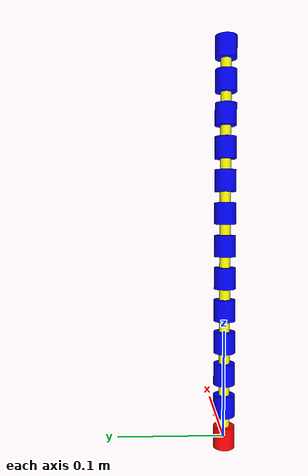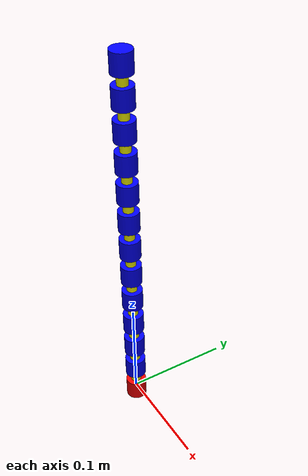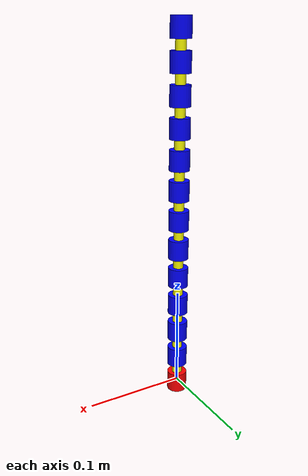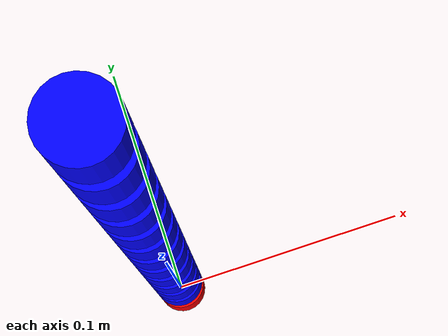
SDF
<sdf version="1.6">
  <model name='chain_sleeve'>

  <dynamics damping="0.0" />
  <contact>
    <restitution value="0.01"/>
    <lateral_friction value="0.5"/>
    <rolling_friction value="0.5"/>
    <contact_cfm value="0.0"/>
    <contact_erp value="1.0"/>
  </contact>

  <link name='body_link_0'>
    <self_collide>1</self_collide>
    <pose>0 0 0 0 -0 0</pose>
    <inertial>
      <pose>0 0 0 0 -0 0</pose>
      <mass>0.002</mass>
      <inertia>
        <ixx>1.1666666666666667e-07</ixx>
        <ixy>0</ixy>
        <ixz>0</ixz>
        <iyy>1.1666666666666667e-07</iyy>
        <iyz>0</iyz>
        <izz>1.0000000000000001e-07</izz>
      </inertia>
    </inertial>
    <collision name='base_link_collision_0'>
      <pose>0 0 0 0 -0 0</pose>
      <geometry>
        <cylinder>
          <length>0.02 0.02 0.02</length>
          <radius>0.01 0.01 0.01</radius>
        </cylinder>
      </geometry>
    </collision>
    <visual name='base_link_visual_0'>
      <pose>0 0 0 0 -0 0</pose>
      <geometry>
        <cylinder>
          <length>0.02 0.02 0.02</length>
          <radius>0.01 0.01 0.01</radius>
        </cylinder>
      </geometry>
      <material name="red">
        <ambient>1 0 0 1</ambient>
        <diffuse>1 0 0 1</diffuse>
        <specular>1 0 0 1</specular>
        <emissive>0 0 0 0</emissive>
      </material>
    </visual>
  </link>

  <link name='aux_body_link_1'>
    <self_collide>1</self_collide>
    <pose>0 0 0.015 0 -0 0</pose>
    <inertial>
      <pose>0 0 0 0 -0 0</pose>
      <mass>0.002</mass>
      <inertia>
        <ixx>2.9166666666666666e-08</ixx>
        <ixy>0</ixy>
        <ixz>0</ixz>
        <iyy>2.9166666666666666e-08</iyy>
        <iyz>0</iyz>
        <izz>2.5000000000000002e-08</izz>
      </inertia>
    </inertial>
    <collision name='aux_body_link_1_collision'>
      <pose>0 0 0 0 -0 0</pose>
      <geometry>
        <cylinder>
          <length>0.01 0.01 0.01</length>
          <radius>0.005 0.005 0.005</radius>
        </cylinder>
      </geometry>
    </collision>
    <visual name='aux_body_link_1_visual'>
      <pose>0 0 0 0 -0 0</pose>
      <geometry>
        <cylinder>
          <length>0.01 0.01 0.01</length>
          <radius>0.005 0.005 0.005</radius>
        </cylinder>
      </geometry>
      <material name="yellow">
        <ambient>1 1 0 1</ambient>
        <diffuse>1 1 0 1</diffuse>
        <specular>1 1 0 1</specular>
        <emissive>0 0 0 0</emissive>
      </material>
    </visual>
  </link>

  <joint name='aux_body_link_1_joint' type='revolute'>
    <pose>0 0 -0.005 0 0 0</pose>
    <child>aux_body_link_1</child>
    <parent>body_link_0</parent>
    <axis>
      <xyz>1 0 0</xyz>
      <limit>
        <lower>-3.14159</lower>
        <upper>3.14159</upper>
        <effort>20</effort>
        <velocity>2</velocity>
      </limit>
    </axis>
  </joint>

  <link name='body_link_1'>
    <self_collide>1</self_collide>
    <pose>0 0 0.03 0 -0 0</pose>
    <inertial>
      <pose>0 0 0 0 -0 0</pose>
      <mass>0.002</mass>
      <inertia>
        <ixx>1.1666666666666667e-07</ixx>
        <ixy>0</ixy>
        <ixz>0</ixz>
        <iyy>1.1666666666666667e-07</iyy>
        <iyz>0</iyz>
        <izz>1.0000000000000001e-07</izz>
      </inertia>
    </inertial>
    <collision name='body_link_1_collision'>
      <pose>0 0 0 0 -0 0</pose>
      <geometry>
        <cylinder>
          <length>0.02 0.02 0.02</length>
          <radius>0.01 0.01 0.01</radius>
        </cylinder>
      </geometry>
    </collision>
    <visual name='body_link_1_visual'>
      <pose>0 0 0 0 -0 0</pose>
      <geometry>
        <cylinder>
          <length>0.02 0.02 0.02</length>
          <radius>0.01 0.01 0.01</radius>
        </cylinder>
      </geometry>
      <material name="blue">
        <ambient>0 0 1 1</ambient>
        <diffuse>0 0 1 1</diffuse>
        <specular>0 0 1 1</specular>
        <emissive>0 0 0 0</emissive>
      </material>
    </visual>
  </link>

  <joint name='body_link_1_joint' type='revolute'>
    <pose>0 0 -0.01 0 0 0</pose>
    <child>body_link_1</child>
    <parent>aux_body_link_1</parent>
    <axis>
      <xyz>0 1 0</xyz>
      <limit>
        <lower>-3.14159</lower>
        <upper>3.14159</upper>
        <effort>20</effort>
        <velocity>2</velocity>
      </limit>
    </axis>
  </joint>

  <link name='aux_body_link_2'>
    <self_collide>1</self_collide>
    <pose>0 0 0.045 0 -0 0</pose>
    <inertial>
      <pose>0 0 0 0 -0 0</pose>
      <mass>0.002</mass>
      <inertia>
        <ixx>2.9166666666666666e-08</ixx>
        <ixy>0</ixy>
        <ixz>0</ixz>
        <iyy>2.9166666666666666e-08</iyy>
        <iyz>0</iyz>
        <izz>2.5000000000000002e-08</izz>
      </inertia>
    </inertial>
    <collision name='aux_body_link_2_collision'>
      <pose>0 0 0 0 -0 0</pose>
      <geometry>
        <cylinder>
          <length>0.01 0.01 0.01</length>
          <radius>0.005 0.005 0.005</radius>
        </cylinder>
      </geometry>
    </collision>
    <visual name='aux_body_link_2_visual'>
      <pose>0 0 0 0 -0 0</pose>
      <geometry>
        <cylinder>
          <length>0.01 0.01 0.01</length>
          <radius>0.005 0.005 0.005</radius>
        </cylinder>
      </geometry>
      <material name="yellow">
        <ambient>1 1 0 1</ambient>
        <diffuse>1 1 0 1</diffuse>
        <specular>1 1 0 1</specular>
        <emissive>0 0 0 0</emissive>
      </material>
    </visual>
  </link>

  <joint name='aux_body_link_2_joint' type='revolute'>
    <pose>0 0 -0.005 0 0 0</pose>
    <child>aux_body_link_2</child>
    <parent>body_link_1</parent>
    <axis>
      <xyz>1 0 0</xyz>
      <limit>
        <lower>-3.14159</lower>
        <upper>3.14159</upper>
        <effort>20</effort>
        <velocity>2</velocity>
      </limit>
    </axis>
  </joint>

  <link name='body_link_2'>
    <self_collide>1</self_collide>
    <pose>0 0 0.06 0 -0 0</pose>
    <inertial>
      <pose>0 0 0 0 -0 0</pose>
      <mass>0.002</mass>
      <inertia>
        <ixx>1.1666666666666667e-07</ixx>
        <ixy>0</ixy>
        <ixz>0</ixz>
        <iyy>1.1666666666666667e-07</iyy>
        <iyz>0</iyz>
        <izz>1.0000000000000001e-07</izz>
      </inertia>
    </inertial>
    <collision name='body_link_2_collision'>
      <pose>0 0 0 0 -0 0</pose>
      <geometry>
        <cylinder>
          <length>0.02 0.02 0.02</length>
          <radius>0.01 0.01 0.01</radius>
        </cylinder>
      </geometry>
    </collision>
    <visual name='body_link_2_visual'>
      <pose>0 0 0 0 -0 0</pose>
      <geometry>
        <cylinder>
          <length>0.02 0.02 0.02</length>
          <radius>0.01 0.01 0.01</radius>
        </cylinder>
      </geometry>
      <material name="blue">
        <ambient>0 0 1 1</ambient>
        <diffuse>0 0 1 1</diffuse>
        <specular>0 0 1 1</specular>
        <emissive>0 0 0 0</emissive>
      </material>
    </visual>
  </link>

  <joint name='body_link_2_joint' type='revolute'>
    <pose>0 0 -0.01 0 0 0</pose>
    <child>body_link_2</child>
    <parent>aux_body_link_2</parent>
    <axis>
      <xyz>0 1 0</xyz>
      <limit>
        <lower>-3.14159</lower>
        <upper>3.14159</upper>
        <effort>20</effort>
        <velocity>2</velocity>
      </limit>
    </axis>
  </joint>

  <link name='aux_body_link_3'>
    <self_collide>1</self_collide>
    <pose>0 0 0.075 0 -0 0</pose>
    <inertial>
      <pose>0 0 0 0 -0 0</pose>
      <mass>0.002</mass>
      <inertia>
        <ixx>2.9166666666666666e-08</ixx>
        <ixy>0</ixy>
        <ixz>0</ixz>
        <iyy>2.9166666666666666e-08</iyy>
        <iyz>0</iyz>
        <izz>2.5000000000000002e-08</izz>
      </inertia>
    </inertial>
    <collision name='aux_body_link_3_collision'>
      <pose>0 0 0 0 -0 0</pose>
      <geometry>
        <cylinder>
          <length>0.01 0.01 0.01</length>
          <radius>0.005 0.005 0.005</radius>
        </cylinder>
      </geometry>
    </collision>
    <visual name='aux_body_link_3_visual'>
      <pose>0 0 0 0 -0 0</pose>
      <geometry>
        <cylinder>
          <length>0.01 0.01 0.01</length>
          <radius>0.005 0.005 0.005</radius>
        </cylinder>
      </geometry>
      <material name="yellow">
        <ambient>1 1 0 1</ambient>
        <diffuse>1 1 0 1</diffuse>
        <specular>1 1 0 1</specular>
        <emissive>0 0 0 0</emissive>
      </material>
    </visual>
  </link>

  <joint name='aux_body_link_3_joint' type='revolute'>
    <pose>0 0 -0.005 0 0 0</pose>
    <child>aux_body_link_3</child>
    <parent>body_link_2</parent>
    <axis>
      <xyz>1 0 0</xyz>
      <limit>
        <lower>-3.14159</lower>
        <upper>3.14159</upper>
        <effort>20</effort>
        <velocity>2</velocity>
      </limit>
    </axis>
  </joint>

  <link name='body_link_3'>
    <self_collide>1</self_collide>
    <pose>0 0 0.09 0 -0 0</pose>
    <inertial>
      <pose>0 0 0 0 -0 0</pose>
      <mass>0.002</mass>
      <inertia>
        <ixx>1.1666666666666667e-07</ixx>
        <ixy>0</ixy>
        <ixz>0</ixz>
        <iyy>1.1666666666666667e-07</iyy>
        <iyz>0</iyz>
        <izz>1.0000000000000001e-07</izz>
      </inertia>
    </inertial>
    <collision name='body_link_3_collision'>
      <pose>0 0 0 0 -0 0</pose>
      <geometry>
        <cylinder>
          <length>0.02 0.02 0.02</length>
          <radius>0.01 0.01 0.01</radius>
        </cylinder>
      </geometry>
    </collision>
    <visual name='body_link_3_visual'>
      <pose>0 0 0 0 -0 0</pose>
      <geometry>
        <cylinder>
          <length>0.02 0.02 0.02</length>
          <radius>0.01 0.01 0.01</radius>
        </cylinder>
      </geometry>
      <material name="blue">
        <ambient>0 0 1 1</ambient>
        <diffuse>0 0 1 1</diffuse>
        <specular>0 0 1 1</specular>
        <emissive>0 0 0 0</emissive>
      </material>
    </visual>
  </link>

  <joint name='body_link_3_joint' type='revolute'>
    <pose>0 0 -0.01 0 0 0</pose>
    <child>body_link_3</child>
    <parent>aux_body_link_3</parent>
    <axis>
      <xyz>0 1 0</xyz>
      <limit>
        <lower>-3.14159</lower>
        <upper>3.14159</upper>
        <effort>20</effort>
        <velocity>2</velocity>
      </limit>
    </axis>
  </joint>

  <link name='aux_body_link_4'>
    <self_collide>1</self_collide>
    <pose>0 0 0.105 0 -0 0</pose>
    <inertial>
      <pose>0 0 0 0 -0 0</pose>
      <mass>0.002</mass>
      <inertia>
        <ixx>2.9166666666666666e-08</ixx>
        <ixy>0</ixy>
        <ixz>0</ixz>
        <iyy>2.9166666666666666e-08</iyy>
        <iyz>0</iyz>
        <izz>2.5000000000000002e-08</izz>
      </inertia>
    </inertial>
    <collision name='aux_body_link_4_collision'>
      <pose>0 0 0 0 -0 0</pose>
      <geometry>
        <cylinder>
          <length>0.01 0.01 0.01</length>
          <radius>0.005 0.005 0.005</radius>
        </cylinder>
      </geometry>
    </collision>
    <visual name='aux_body_link_4_visual'>
      <pose>0 0 0 0 -0 0</pose>
      <geometry>
        <cylinder>
          <length>0.01 0.01 0.01</length>
          <radius>0.005 0.005 0.005</radius>
        </cylinder>
      </geometry>
      <material name="yellow">
        <ambient>1 1 0 1</ambient>
        <diffuse>1 1 0 1</diffuse>
        <specular>1 1 0 1</specular>
        <emissive>0 0 0 0</emissive>
      </material>
    </visual>
  </link>

  <joint name='aux_body_link_4_joint' type='revolute'>
    <pose>0 0 -0.005 0 0 0</pose>
    <child>aux_body_link_4</child>
    <parent>body_link_3</parent>
    <axis>
      <xyz>1 0 0</xyz>
      <limit>
        <lower>-3.14159</lower>
        <upper>3.14159</upper>
        <effort>20</effort>
        <velocity>2</velocity>
      </limit>
    </axis>
  </joint>

  <link name='body_link_4'>
    <self_collide>1</self_collide>
    <pose>0 0 0.12 0 -0 0</pose>
    <inertial>
      <pose>0 0 0 0 -0 0</pose>
      <mass>0.002</mass>
      <inertia>
        <ixx>1.1666666666666667e-07</ixx>
        <ixy>0</ixy>
        <ixz>0</ixz>
        <iyy>1.1666666666666667e-07</iyy>
        <iyz>0</iyz>
        <izz>1.0000000000000001e-07</izz>
      </inertia>
    </inertial>
    <collision name='body_link_4_collision'>
      <pose>0 0 0 0 -0 0</pose>
      <geometry>
        <cylinder>
          <length>0.02 0.02 0.02</length>
          <radius>0.01 0.01 0.01</radius>
        </cylinder>
      </geometry>
    </collision>
    <visual name='body_link_4_visual'>
      <pose>0 0 0 0 -0 0</pose>
      <geometry>
        <cylinder>
          <length>0.02 0.02 0.02</length>
          <radius>0.01 0.01 0.01</radius>
        </cylinder>
      </geometry>
      <material name="blue">
        <ambient>0 0 1 1</ambient>
        <diffuse>0 0 1 1</diffuse>
        <specular>0 0 1 1</specular>
        <emissive>0 0 0 0</emissive>
      </material>
    </visual>
  </link>

  <joint name='body_link_4_joint' type='revolute'>
    <pose>0 0 -0.01 0 0 0</pose>
    <child>body_link_4</child>
    <parent>aux_body_link_4</parent>
    <axis>
      <xyz>0 1 0</xyz>
      <limit>
        <lower>-3.14159</lower>
        <upper>3.14159</upper>
        <effort>20</effort>
        <velocity>2</velocity>
      </limit>
    </axis>
  </joint>

  <link name='aux_body_link_5'>
    <self_collide>1</self_collide>
    <pose>0 0 0.135 0 -0 0</pose>
    <inertial>
      <pose>0 0 0 0 -0 0</pose>
      <mass>0.002</mass>
      <inertia>
        <ixx>2.9166666666666666e-08</ixx>
        <ixy>0</ixy>
        <ixz>0</ixz>
        <iyy>2.9166666666666666e-08</iyy>
        <iyz>0</iyz>
        <izz>2.5000000000000002e-08</izz>
      </inertia>
    </inertial>
    <collision name='aux_body_link_5_collision'>
      <pose>0 0 0 0 -0 0</pose>
      <geometry>
        <cylinder>
          <length>0.01 0.01 0.01</length>
          <radius>0.005 0.005 0.005</radius>
        </cylinder>
      </geometry>
    </collision>
    <visual name='aux_body_link_5_visual'>
      <pose>0 0 0 0 -0 0</pose>
      <geometry>
        <cylinder>
          <length>0.01 0.01 0.01</length>
          <radius>0.005 0.005 0.005</radius>
        </cylinder>
      </geometry>
      <material name="yellow">
        <ambient>1 1 0 1</ambient>
        <diffuse>1 1 0 1</diffuse>
        <specular>1 1 0 1</specular>
        <emissive>0 0 0 0</emissive>
      </material>
    </visual>
  </link>

  <joint name='aux_body_link_5_joint' type='revolute'>
    <pose>0 0 -0.005 0 0 0</pose>
    <child>aux_body_link_5</child>
    <parent>body_link_4</parent>
    <axis>
      <xyz>1 0 0</xyz>
      <limit>
        <lower>-3.14159</lower>
        <upper>3.14159</upper>
        <effort>20</effort>
        <velocity>2</velocity>
      </limit>
    </axis>
  </joint>

  <link name='body_link_5'>
    <self_collide>1</self_collide>
    <pose>0 0 0.15 0 -0 0</pose>
    <inertial>
      <pose>0 0 0 0 -0 0</pose>
      <mass>0.002</mass>
      <inertia>
        <ixx>1.1666666666666667e-07</ixx>
        <ixy>0</ixy>
        <ixz>0</ixz>
        <iyy>1.1666666666666667e-07</iyy>
        <iyz>0</iyz>
        <izz>1.0000000000000001e-07</izz>
      </inertia>
    </inertial>
    <collision name='body_link_5_collision'>
      <pose>0 0 0 0 -0 0</pose>
      <geometry>
        <cylinder>
          <length>0.02 0.02 0.02</length>
          <radius>0.01 0.01 0.01</radius>
        </cylinder>
      </geometry>
    </collision>
    <visual name='body_link_5_visual'>
      <pose>0 0 0 0 -0 0</pose>
      <geometry>
        <cylinder>
          <length>0.02 0.02 0.02</length>
          <radius>0.01 0.01 0.01</radius>
        </cylinder>
      </geometry>
      <material name="blue">
        <ambient>0 0 1 1</ambient>
        <diffuse>0 0 1 1</diffuse>
        <specular>0 0 1 1</specular>
        <emissive>0 0 0 0</emissive>
      </material>
    </visual>
  </link>

  <joint name='body_link_5_joint' type='revolute'>
    <pose>0 0 -0.01 0 0 0</pose>
    <child>body_link_5</child>
    <parent>aux_body_link_5</parent>
    <axis>
      <xyz>0 1 0</xyz>
      <limit>
        <lower>-3.14159</lower>
        <upper>3.14159</upper>
        <effort>20</effort>
        <velocity>2</velocity>
      </limit>
    </axis>
  </joint>

  <link name='aux_body_link_6'>
    <self_collide>1</self_collide>
    <pose>0 0 0.16499999999999998 0 -0 0</pose>
    <inertial>
      <pose>0 0 0 0 -0 0</pose>
      <mass>0.002</mass>
      <inertia>
        <ixx>2.9166666666666666e-08</ixx>
        <ixy>0</ixy>
        <ixz>0</ixz>
        <iyy>2.9166666666666666e-08</iyy>
        <iyz>0</iyz>
        <izz>2.5000000000000002e-08</izz>
      </inertia>
    </inertial>
    <collision name='aux_body_link_6_collision'>
      <pose>0 0 0 0 -0 0</pose>
      <geometry>
        <cylinder>
          <length>0.01 0.01 0.01</length>
          <radius>0.005 0.005 0.005</radius>
        </cylinder>
      </geometry>
    </collision>
    <visual name='aux_body_link_6_visual'>
      <pose>0 0 0 0 -0 0</pose>
      <geometry>
        <cylinder>
          <length>0.01 0.01 0.01</length>
          <radius>0.005 0.005 0.005</radius>
        </cylinder>
      </geometry>
      <material name="yellow">
        <ambient>1 1 0 1</ambient>
        <diffuse>1 1 0 1</diffuse>
        <specular>1 1 0 1</specular>
        <emissive>0 0 0 0</emissive>
      </material>
    </visual>
  </link>

  <joint name='aux_body_link_6_joint' type='revolute'>
    <pose>0 0 -0.005 0 0 0</pose>
    <child>aux_body_link_6</child>
    <parent>body_link_5</parent>
    <axis>
      <xyz>1 0 0</xyz>
      <limit>
        <lower>-3.14159</lower>
        <upper>3.14159</upper>
        <effort>20</effort>
        <velocity>2</velocity>
      </limit>
    </axis>
  </joint>

  <link name='body_link_6'>
    <self_collide>1</self_collide>
    <pose>0 0 0.18 0 -0 0</pose>
    <inertial>
      <pose>0 0 0 0 -0 0</pose>
      <mass>0.002</mass>
      <inertia>
        <ixx>1.1666666666666667e-07</ixx>
        <ixy>0</ixy>
        <ixz>0</ixz>
        <iyy>1.1666666666666667e-07</iyy>
        <iyz>0</iyz>
        <izz>1.0000000000000001e-07</izz>
      </inertia>
    </inertial>
    <collision name='body_link_6_collision'>
      <pose>0 0 0 0 -0 0</pose>
      <geometry>
        <cylinder>
          <length>0.02 0.02 0.02</length>
          <radius>0.01 0.01 0.01</radius>
        </cylinder>
      </geometry>
    </collision>
    <visual name='body_link_6_visual'>
      <pose>0 0 0 0 -0 0</pose>
      <geometry>
        <cylinder>
          <length>0.02 0.02 0.02</length>
          <radius>0.01 0.01 0.01</radius>
        </cylinder>
      </geometry>
      <material name="blue">
        <ambient>0 0 1 1</ambient>
        <diffuse>0 0 1 1</diffuse>
        <specular>0 0 1 1</specular>
        <emissive>0 0 0 0</emissive>
      </material>
    </visual>
  </link>

  <joint name='body_link_6_joint' type='revolute'>
    <pose>0 0 -0.01 0 0 0</pose>
    <child>body_link_6</child>
    <parent>aux_body_link_6</parent>
    <axis>
      <xyz>0 1 0</xyz>
      <limit>
        <lower>-3.14159</lower>
        <upper>3.14159</upper>
        <effort>20</effort>
        <velocity>2</velocity>
      </limit>
    </axis>
  </joint>

  <link name='aux_body_link_7'>
    <self_collide>1</self_collide>
    <pose>0 0 0.195 0 -0 0</pose>
    <inertial>
      <pose>0 0 0 0 -0 0</pose>
      <mass>0.002</mass>
      <inertia>
        <ixx>2.9166666666666666e-08</ixx>
        <ixy>0</ixy>
        <ixz>0</ixz>
        <iyy>2.9166666666666666e-08</iyy>
        <iyz>0</iyz>
        <izz>2.5000000000000002e-08</izz>
      </inertia>
    </inertial>
    <collision name='aux_body_link_7_collision'>
      <pose>0 0 0 0 -0 0</pose>
      <geometry>
        <cylinder>
          <length>0.01 0.01 0.01</length>
          <radius>0.005 0.005 0.005</radius>
        </cylinder>
      </geometry>
    </collision>
    <visual name='aux_body_link_7_visual'>
      <pose>0 0 0 0 -0 0</pose>
      <geometry>
        <cylinder>
          <length>0.01 0.01 0.01</length>
          <radius>0.005 0.005 0.005</radius>
        </cylinder>
      </geometry>
      <material name="yellow">
        <ambient>1 1 0 1</ambient>
        <diffuse>1 1 0 1</diffuse>
        <specular>1 1 0 1</specular>
        <emissive>0 0 0 0</emissive>
      </material>
    </visual>
  </link>

  <joint name='aux_body_link_7_joint' type='revolute'>
    <pose>0 0 -0.005 0 0 0</pose>
    <child>aux_body_link_7</child>
    <parent>body_link_6</parent>
    <axis>
      <xyz>1 0 0</xyz>
      <limit>
        <lower>-3.14159</lower>
        <upper>3.14159</upper>
        <effort>20</effort>
        <velocity>2</velocity>
      </limit>
    </axis>
  </joint>

  <link name='body_link_7'>
    <self_collide>1</self_collide>
    <pose>0 0 0.21 0 -0 0</pose>
    <inertial>
      <pose>0 0 0 0 -0 0</pose>
      <mass>0.002</mass>
      <inertia>
        <ixx>1.1666666666666667e-07</ixx>
        <ixy>0</ixy>
        <ixz>0</ixz>
        <iyy>1.1666666666666667e-07</iyy>
        <iyz>0</iyz>
        <izz>1.0000000000000001e-07</izz>
      </inertia>
    </inertial>
    <collision name='body_link_7_collision'>
      <pose>0 0 0 0 -0 0</pose>
      <geometry>
        <cylinder>
          <length>0.02 0.02 0.02</length>
          <radius>0.01 0.01 0.01</radius>
        </cylinder>
      </geometry>
    </collision>
    <visual name='body_link_7_visual'>
      <pose>0 0 0 0 -0 0</pose>
      <geometry>
        <cylinder>
          <length>0.02 0.02 0.02</length>
          <radius>0.01 0.01 0.01</radius>
        </cylinder>
      </geometry>
      <material name="blue">
        <ambient>0 0 1 1</ambient>
        <diffuse>0 0 1 1</diffuse>
        <specular>0 0 1 1</specular>
        <emissive>0 0 0 0</emissive>
      </material>
    </visual>
  </link>

  <joint name='body_link_7_joint' type='revolute'>
    <pose>0 0 -0.01 0 0 0</pose>
    <child>body_link_7</child>
    <parent>aux_body_link_7</parent>
    <axis>
      <xyz>0 1 0</xyz>
      <limit>
        <lower>-3.14159</lower>
        <upper>3.14159</upper>
        <effort>20</effort>
        <velocity>2</velocity>
      </limit>
    </axis>
  </joint>

  <link name='aux_body_link_8'>
    <self_collide>1</self_collide>
    <pose>0 0 0.22499999999999998 0 -0 0</pose>
    <inertial>
      <pose>0 0 0 0 -0 0</pose>
      <mass>0.002</mass>
      <inertia>
        <ixx>2.9166666666666666e-08</ixx>
        <ixy>0</ixy>
        <ixz>0</ixz>
        <iyy>2.9166666666666666e-08</iyy>
        <iyz>0</iyz>
        <izz>2.5000000000000002e-08</izz>
      </inertia>
    </inertial>
    <collision name='aux_body_link_8_collision'>
      <pose>0 0 0 0 -0 0</pose>
      <geometry>
        <cylinder>
          <length>0.01 0.01 0.01</length>
          <radius>0.005 0.005 0.005</radius>
        </cylinder>
      </geometry>
    </collision>
    <visual name='aux_body_link_8_visual'>
      <pose>0 0 0 0 -0 0</pose>
      <geometry>
        <cylinder>
          <length>0.01 0.01 0.01</length>
          <radius>0.005 0.005 0.005</radius>
        </cylinder>
      </geometry>
      <material name="yellow">
        <ambient>1 1 0 1</ambient>
        <diffuse>1 1 0 1</diffuse>
        <specular>1 1 0 1</specular>
        <emissive>0 0 0 0</emissive>
      </material>
    </visual>
  </link>

  <joint name='aux_body_link_8_joint' type='revolute'>
    <pose>0 0 -0.005 0 0 0</pose>
    <child>aux_body_link_8</child>
    <parent>body_link_7</parent>
    <axis>
      <xyz>1 0 0</xyz>
      <limit>
        <lower>-3.14159</lower>
        <upper>3.14159</upper>
        <effort>20</effort>
        <velocity>2</velocity>
      </limit>
    </axis>
  </joint>

  <link name='body_link_8'>
    <self_collide>1</self_collide>
    <pose>0 0 0.24 0 -0 0</pose>
    <inertial>
      <pose>0 0 0 0 -0 0</pose>
      <mass>0.002</mass>
      <inertia>
        <ixx>1.1666666666666667e-07</ixx>
        <ixy>0</ixy>
        <ixz>0</ixz>
        <iyy>1.1666666666666667e-07</iyy>
        <iyz>0</iyz>
        <izz>1.0000000000000001e-07</izz>
      </inertia>
    </inertial>
    <collision name='body_link_8_collision'>
      <pose>0 0 0 0 -0 0</pose>
      <geometry>
        <cylinder>
          <length>0.02 0.02 0.02</length>
          <radius>0.01 0.01 0.01</radius>
        </cylinder>
      </geometry>
    </collision>
    <visual name='body_link_8_visual'>
      <pose>0 0 0 0 -0 0</pose>
      <geometry>
        <cylinder>
          <length>0.02 0.02 0.02</length>
          <radius>0.01 0.01 0.01</radius>
        </cylinder>
      </geometry>
      <material name="blue">
        <ambient>0 0 1 1</ambient>
        <diffuse>0 0 1 1</diffuse>
        <specular>0 0 1 1</specular>
        <emissive>0 0 0 0</emissive>
      </material>
    </visual>
  </link>

  <joint name='body_link_8_joint' type='revolute'>
    <pose>0 0 -0.01 0 0 0</pose>
    <child>body_link_8</child>
    <parent>aux_body_link_8</parent>
    <axis>
      <xyz>0 1 0</xyz>
      <limit>
        <lower>-3.14159</lower>
        <upper>3.14159</upper>
        <effort>20</effort>
        <velocity>2</velocity>
      </limit>
    </axis>
  </joint>

  <link name='aux_body_link_9'>
    <self_collide>1</self_collide>
    <pose>0 0 0.255 0 -0 0</pose>
    <inertial>
      <pose>0 0 0 0 -0 0</pose>
      <mass>0.002</mass>
      <inertia>
        <ixx>2.9166666666666666e-08</ixx>
        <ixy>0</ixy>
        <ixz>0</ixz>
        <iyy>2.9166666666666666e-08</iyy>
        <iyz>0</iyz>
        <izz>2.5000000000000002e-08</izz>
      </inertia>
    </inertial>
    <collision name='aux_body_link_9_collision'>
      <pose>0 0 0 0 -0 0</pose>
      <geometry>
        <cylinder>
          <length>0.01 0.01 0.01</length>
          <radius>0.005 0.005 0.005</radius>
        </cylinder>
      </geometry>
    </collision>
    <visual name='aux_body_link_9_visual'>
      <pose>0 0 0 0 -0 0</pose>
      <geometry>
        <cylinder>
          <length>0.01 0.01 0.01</length>
          <radius>0.005 0.005 0.005</radius>
        </cylinder>
      </geometry>
      <material name="yellow">
        <ambient>1 1 0 1</ambient>
        <diffuse>1 1 0 1</diffuse>
        <specular>1 1 0 1</specular>
        <emissive>0 0 0 0</emissive>
      </material>
    </visual>
  </link>

  <joint name='aux_body_link_9_joint' type='revolute'>
    <pose>0 0 -0.005 0 0 0</pose>
    <child>aux_body_link_9</child>
    <parent>body_link_8</parent>
    <axis>
      <xyz>1 0 0</xyz>
      <limit>
        <lower>-3.14159</lower>
        <upper>3.14159</upper>
        <effort>20</effort>
        <velocity>2</velocity>
      </limit>
    </axis>
  </joint>

  <link name='body_link_9'>
    <self_collide>1</self_collide>
    <pose>0 0 0.27 0 -0 0</pose>
    <inertial>
      <pose>0 0 0 0 -0 0</pose>
      <mass>0.002</mass>
      <inertia>
        <ixx>1.1666666666666667e-07</ixx>
        <ixy>0</ixy>
        <ixz>0</ixz>
        <iyy>1.1666666666666667e-07</iyy>
        <iyz>0</iyz>
        <izz>1.0000000000000001e-07</izz>
      </inertia>
    </inertial>
    <collision name='body_link_9_collision'>
      <pose>0 0 0 0 -0 0</pose>
      <geometry>
        <cylinder>
          <length>0.02 0.02 0.02</length>
          <radius>0.01 0.01 0.01</radius>
        </cylinder>
      </geometry>
    </collision>
    <visual name='body_link_9_visual'>
      <pose>0 0 0 0 -0 0</pose>
      <geometry>
        <cylinder>
          <length>0.02 0.02 0.02</length>
          <radius>0.01 0.01 0.01</radius>
        </cylinder>
      </geometry>
      <material name="blue">
        <ambient>0 0 1 1</ambient>
        <diffuse>0 0 1 1</diffuse>
        <specular>0 0 1 1</specular>
        <emissive>0 0 0 0</emissive>
      </material>
    </visual>
  </link>

  <joint name='body_link_9_joint' type='revolute'>
    <pose>0 0 -0.01 0 0 0</pose>
    <child>body_link_9</child>
    <parent>aux_body_link_9</parent>
    <axis>
      <xyz>0 1 0</xyz>
      <limit>
        <lower>-3.14159</lower>
        <upper>3.14159</upper>
        <effort>20</effort>
        <velocity>2</velocity>
      </limit>
    </axis>
  </joint>

  <link name='aux_body_link_10'>
    <self_collide>1</self_collide>
    <pose>0 0 0.285 0 -0 0</pose>
    <inertial>
      <pose>0 0 0 0 -0 0</pose>
      <mass>0.002</mass>
      <inertia>
        <ixx>2.9166666666666666e-08</ixx>
        <ixy>0</ixy>
        <ixz>0</ixz>
        <iyy>2.9166666666666666e-08</iyy>
        <iyz>0</iyz>
        <izz>2.5000000000000002e-08</izz>
      </inertia>
    </inertial>
    <collision name='aux_body_link_10_collision'>
      <pose>0 0 0 0 -0 0</pose>
      <geometry>
        <cylinder>
          <length>0.01 0.01 0.01</length>
          <radius>0.005 0.005 0.005</radius>
        </cylinder>
      </geometry>
    </collision>
    <visual name='aux_body_link_10_visual'>
      <pose>0 0 0 0 -0 0</pose>
      <geometry>
        <cylinder>
          <length>0.01 0.01 0.01</length>
          <radius>0.005 0.005 0.005</radius>
        </cylinder>
      </geometry>
      <material name="yellow">
        <ambient>1 1 0 1</ambient>
        <diffuse>1 1 0 1</diffuse>
        <specular>1 1 0 1</specular>
        <emissive>0 0 0 0</emissive>
      </material>
    </visual>
  </link>

  <joint name='aux_body_link_10_joint' type='revolute'>
    <pose>0 0 -0.005 0 0 0</pose>
    <child>aux_body_link_10</child>
    <parent>body_link_9</parent>
    <axis>
      <xyz>1 0 0</xyz>
      <limit>
        <lower>-3.14159</lower>
        <upper>3.14159</upper>
        <effort>20</effort>
        <velocity>2</velocity>
      </limit>
    </axis>
  </joint>

  <link name='body_link_10'>
    <self_collide>1</self_collide>
    <pose>0 0 0.3 0 -0 0</pose>
    <inertial>
      <pose>0 0 0 0 -0 0</pose>
      <mass>0.002</mass>
      <inertia>
        <ixx>1.1666666666666667e-07</ixx>
        <ixy>0</ixy>
        <ixz>0</ixz>
        <iyy>1.1666666666666667e-07</iyy>
        <iyz>0</iyz>
        <izz>1.0000000000000001e-07</izz>
      </inertia>
    </inertial>
    <collision name='body_link_10_collision'>
      <pose>0 0 0 0 -0 0</pose>
      <geometry>
        <cylinder>
          <length>0.02 0.02 0.02</length>
          <radius>0.01 0.01 0.01</radius>
        </cylinder>
      </geometry>
    </collision>
    <visual name='body_link_10_visual'>
      <pose>0 0 0 0 -0 0</pose>
      <geometry>
        <cylinder>
          <length>0.02 0.02 0.02</length>
          <radius>0.01 0.01 0.01</radius>
        </cylinder>
      </geometry>
      <material name="blue">
        <ambient>0 0 1 1</ambient>
        <diffuse>0 0 1 1</diffuse>
        <specular>0 0 1 1</specular>
        <emissive>0 0 0 0</emissive>
      </material>
    </visual>
  </link>

  <joint name='body_link_10_joint' type='revolute'>
    <pose>0 0 -0.01 0 0 0</pose>
    <child>body_link_10</child>
    <parent>aux_body_link_10</parent>
    <axis>
      <xyz>0 1 0</xyz>
      <limit>
        <lower>-3.14159</lower>
        <upper>3.14159</upper>
        <effort>20</effort>
        <velocity>2</velocity>
      </limit>
    </axis>
  </joint>

  <link name='aux_body_link_11'>
    <self_collide>1</self_collide>
    <pose>0 0 0.315 0 -0 0</pose>
    <inertial>
      <pose>0 0 0 0 -0 0</pose>
      <mass>0.002</mass>
      <inertia>
        <ixx>2.9166666666666666e-08</ixx>
        <ixy>0</ixy>
        <ixz>0</ixz>
        <iyy>2.9166666666666666e-08</iyy>
        <iyz>0</iyz>
        <izz>2.5000000000000002e-08</izz>
      </inertia>
    </inertial>
    <collision name='aux_body_link_11_collision'>
      <pose>0 0 0 0 -0 0</pose>
      <geometry>
        <cylinder>
          <length>0.01 0.01 0.01</length>
          <radius>0.005 0.005 0.005</radius>
        </cylinder>
      </geometry>
    </collision>
    <visual name='aux_body_link_11_visual'>
      <pose>0 0 0 0 -0 0</pose>
      <geometry>
        <cylinder>
          <length>0.01 0.01 0.01</length>
          <radius>0.005 0.005 0.005</radius>
        </cylinder>
      </geometry>
      <material name="yellow">
        <ambient>1 1 0 1</ambient>
        <diffuse>1 1 0 1</diffuse>
        <specular>1 1 0 1</specular>
        <emissive>0 0 0 0</emissive>
      </material>
    </visual>
  </link>

  <joint name='aux_body_link_11_joint' type='revolute'>
    <pose>0 0 -0.005 0 0 0</pose>
    <child>aux_body_link_11</child>
    <parent>body_link_10</parent>
    <axis>
      <xyz>1 0 0</xyz>
      <limit>
        <lower>-3.14159</lower>
        <upper>3.14159</upper>
        <effort>20</effort>
        <velocity>2</velocity>
      </limit>
    </axis>
  </joint>

  <link name='body_link_11'>
    <self_collide>1</self_collide>
    <pose>0 0 0.32999999999999996 0 -0 0</pose>
    <inertial>
      <pose>0 0 0 0 -0 0</pose>
      <mass>0.002</mass>
      <inertia>
        <ixx>1.1666666666666667e-07</ixx>
        <ixy>0</ixy>
        <ixz>0</ixz>
        <iyy>1.1666666666666667e-07</iyy>
        <iyz>0</iyz>
        <izz>1.0000000000000001e-07</izz>
      </inertia>
    </inertial>
    <collision name='body_link_11_collision'>
      <pose>0 0 0 0 -0 0</pose>
      <geometry>
        <cylinder>
          <length>0.02 0.02 0.02</length>
          <radius>0.01 0.01 0.01</radius>
        </cylinder>
      </geometry>
    </collision>
    <visual name='body_link_11_visual'>
      <pose>0 0 0 0 -0 0</pose>
      <geometry>
        <cylinder>
          <length>0.02 0.02 0.02</length>
          <radius>0.01 0.01 0.01</radius>
        </cylinder>
      </geometry>
      <material name="blue">
        <ambient>0 0 1 1</ambient>
        <diffuse>0 0 1 1</diffuse>
        <specular>0 0 1 1</specular>
        <emissive>0 0 0 0</emissive>
      </material>
    </visual>
  </link>

  <joint name='body_link_11_joint' type='revolute'>
    <pose>0 0 -0.01 0 0 0</pose>
    <child>body_link_11</child>
    <parent>aux_body_link_11</parent>
    <axis>
      <xyz>0 1 0</xyz>
      <limit>
        <lower>-3.14159</lower>
        <upper>3.14159</upper>
        <effort>20</effort>
        <velocity>2</velocity>
      </limit>
    </axis>
  </joint>

  <link name='aux_body_link_12'>
    <self_collide>1</self_collide>
    <pose>0 0 0.345 0 -0 0</pose>
    <inertial>
      <pose>0 0 0 0 -0 0</pose>
      <mass>0.002</mass>
      <inertia>
        <ixx>2.9166666666666666e-08</ixx>
        <ixy>0</ixy>
        <ixz>0</ixz>
        <iyy>2.9166666666666666e-08</iyy>
        <iyz>0</iyz>
        <izz>2.5000000000000002e-08</izz>
      </inertia>
    </inertial>
    <collision name='aux_body_link_12_collision'>
      <pose>0 0 0 0 -0 0</pose>
      <geometry>
        <cylinder>
          <length>0.01 0.01 0.01</length>
          <radius>0.005 0.005 0.005</radius>
        </cylinder>
      </geometry>
    </collision>
    <visual name='aux_body_link_12_visual'>
      <pose>0 0 0 0 -0 0</pose>
      <geometry>
        <cylinder>
          <length>0.01 0.01 0.01</length>
          <radius>0.005 0.005 0.005</radius>
        </cylinder>
      </geometry>
      <material name="yellow">
        <ambient>1 1 0 1</ambient>
        <diffuse>1 1 0 1</diffuse>
        <specular>1 1 0 1</specular>
        <emissive>0 0 0 0</emissive>
      </material>
    </visual>
  </link>

  <joint name='aux_body_link_12_joint' type='revolute'>
    <pose>0 0 -0.005 0 0 0</pose>
    <child>aux_body_link_12</child>
    <parent>body_link_11</parent>
    <axis>
      <xyz>1 0 0</xyz>
      <limit>
        <lower>-3.14159</lower>
        <upper>3.14159</upper>
        <effort>20</effort>
        <velocity>2</velocity>
      </limit>
    </axis>
  </joint>

  <link name='body_link_12'>
    <self_collide>1</self_collide>
    <pose>0 0 0.36 0 -0 0</pose>
    <inertial>
      <pose>0 0 0 0 -0 0</pose>
      <mass>0.002</mass>
      <inertia>
        <ixx>1.1666666666666667e-07</ixx>
        <ixy>0</ixy>
        <ixz>0</ixz>
        <iyy>1.1666666666666667e-07</iyy>
        <iyz>0</iyz>
        <izz>1.0000000000000001e-07</izz>
      </inertia>
    </inertial>
    <collision name='body_link_12_collision'>
      <pose>0 0 0 0 -0 0</pose>
      <geometry>
        <cylinder>
          <length>0.02 0.02 0.02</length>
          <radius>0.01 0.01 0.01</radius>
        </cylinder>
      </geometry>
    </collision>
    <visual name='body_link_12_visual'>
      <pose>0 0 0 0 -0 0</pose>
      <geometry>
        <cylinder>
          <length>0.02 0.02 0.02</length>
          <radius>0.01 0.01 0.01</radius>
        </cylinder>
      </geometry>
      <material name="blue">
        <ambient>0 0 1 1</ambient>
        <diffuse>0 0 1 1</diffuse>
        <specular>0 0 1 1</specular>
        <emissive>0 0 0 0</emissive>
      </material>
    </visual>
  </link>

  <joint name='body_link_12_joint' type='revolute'>
    <pose>0 0 -0.01 0 0 0</pose>
    <child>body_link_12</child>
    <parent>aux_body_link_12</parent>
    <axis>
      <xyz>0 1 0</xyz>
      <limit>
        <lower>-3.14159</lower>
        <upper>3.14159</upper>
        <effort>20</effort>
        <velocity>2</velocity>
      </limit>
    </axis>
  </joint>

  </model>
</sdf>
